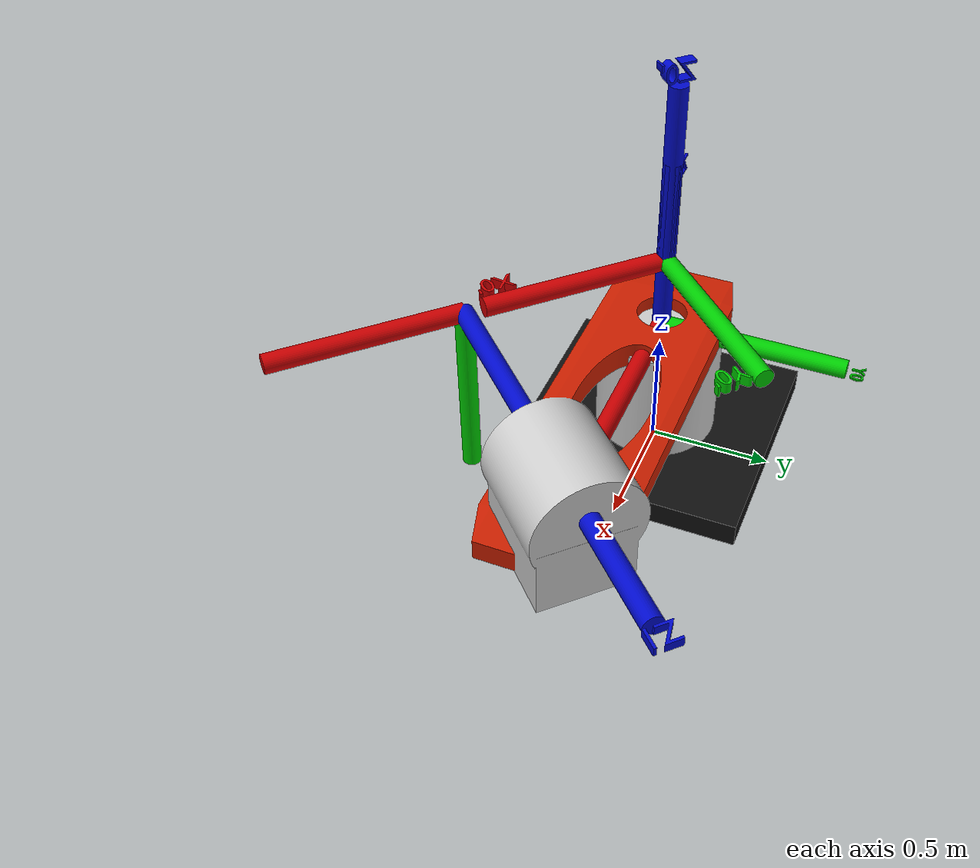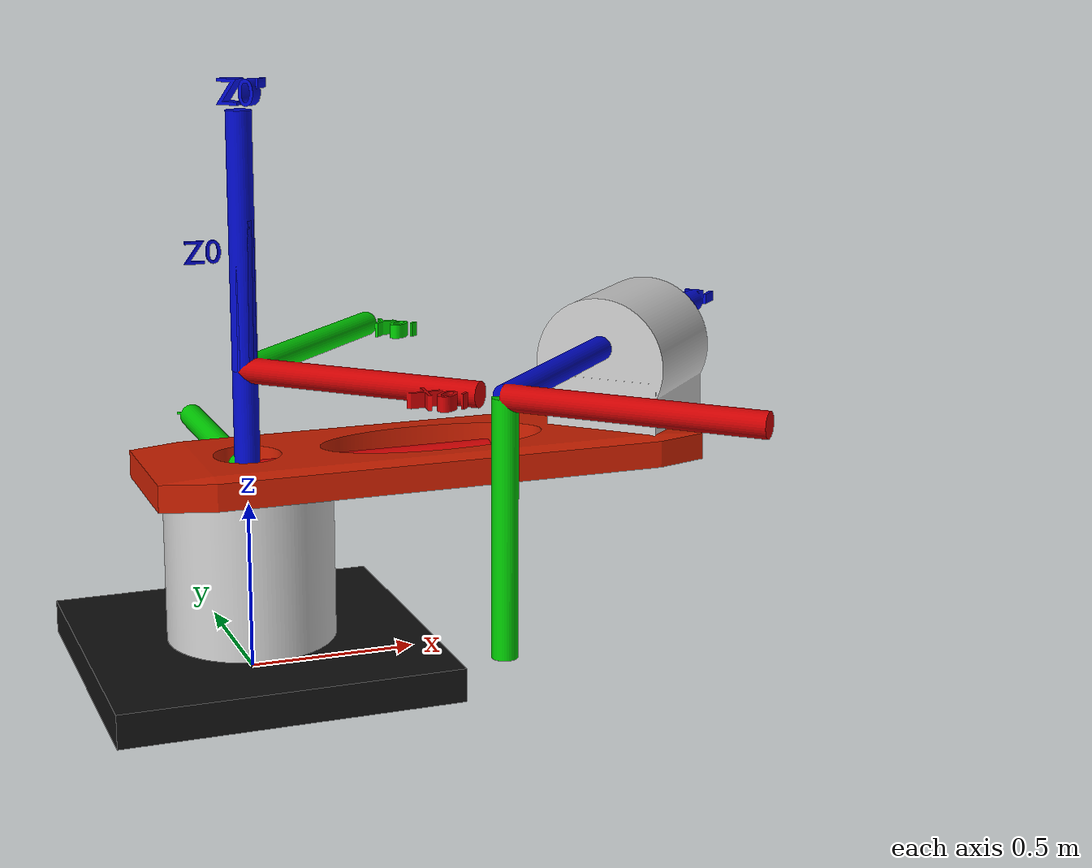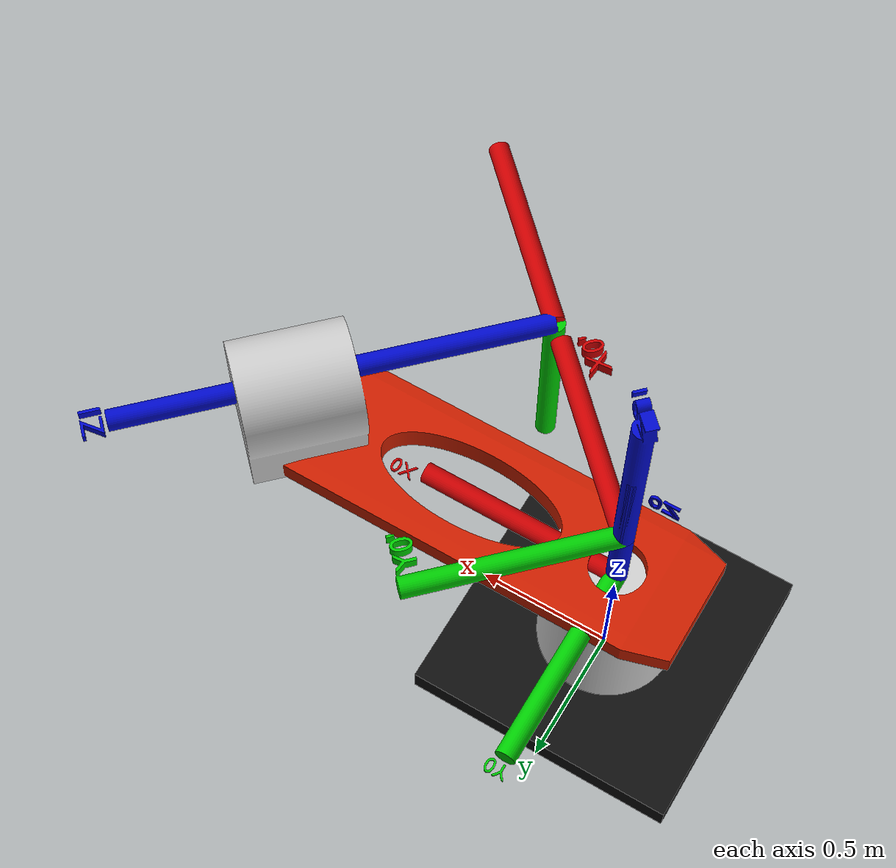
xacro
<?xml version="1.0"?>
<!-- Revolute-Revolute Manipulator -->
<robot name="planar_3dof" xmlns:xacro="http://www.ros.org/wiki/xacro">

  <!-- Constants for robot dimensions -->
  <xacro:property name="PI" value="3.1415926535897931"/>
  <xacro:property name="mass" value="1" />

  <xacro:property name="scale_dim" value="1.0" />
  <xacro:property name="base_z_displacement" value="0.051" />
  <xacro:property name="link_1_bb_x" value="1.0" />
  <xacro:property name="link_1_bb_y" value="1.0" />
  <xacro:property name="link_1_bb_z" value="0.58" />

  <xacro:property name="link_2_bb_x" value="1.82294" />
  <xacro:property name="link_2_bb_y" value="0.603217" />
  <xacro:property name="link_2_bb_z" value="0.508202" />

  <xacro:property name="axis_bb" value="0.788" />
  <xacro:property name="frame0_z_displacement" value="0.54262" />
  <xacro:property name="scale_axis_dim" value="1.0" />

  <xacro:property name="d_i" value="0.31123" />
  <xacro:property name="theta_i" value="${-PI/4}" />
  <xacro:property name="r_i" value="0.825129" />
  <xacro:property name="alpha_i" value="${-PI/2}" />

  <xacro:macro name="box_inertia" params="mass x y z">
    <inertia  ixx="${mass*(y*y+z*z)/12.0}" ixy = "0" ixz = "0"
              iyy="${mass*(x*x+z*z)/12.0}" iyz = "0"
              izz="${mass*(x*x+y*y)/12.0}"
    />
  </xacro:macro>

  <xacro:macro  name="cylinder_inertia" params="mass r l">
      <inertia  ixx="${mass*(3*r*r+l*l)/12}" ixy = "0" ixz = "0"
                iyy="${mass*(3*r*r+l*l)/12}" iyz = "0"
                izz="${mass*(r*r)/2}" />
  </xacro:macro >

  <xacro:include filename="$(find dh_description)/robot/dh_sim.gazebo" />

  <link name="world"/>

  <link name="link_1">
    <collision>
      <origin xyz="0 0 0" rpy="0 0 0"/>
          <geometry>
                <mesh filename="package://dh_description/meshes/dh_sim_link1.dae" scale="${scale_dim} ${scale_dim} ${scale_dim}"/>
          </geometry>
    </collision>

    <visual>
      <origin xyz="0 0 0" rpy="0 0 0"/>
          <geometry>
                <mesh filename="package://dh_description/meshes/dh_sim_link1.dae" scale="${scale_dim} ${scale_dim} ${scale_dim}"/>
          </geometry>
    </visual>

    <inertial>
      <origin xyz="0 0 0" rpy="0 0 0"/>
      <mass value="${mass}"/>
      <xacro:box_inertia mass="${mass}" x="${link_1_bb_x}" y="${link_1_bb_y}" z="${link_1_bb_z}"/>
    </inertial>
  </link>

  <joint name="fixed_world_to_base_joint" type="fixed">
    <origin xyz="0 0 ${base_z_displacement}" rpy="0 0 0"/>
    <parent link="world"/>
    <child link="link_1"/>
  </joint>

  <!-- Extra visual frames-->
  <link name="frame_0">
    <collision>
      <origin xyz="0 0 0" rpy="0 0 0"/>
          <geometry>
                <mesh filename="package://dh_description/meshes/axis_frame_0.dae" scale="${scale_axis_dim} ${scale_axis_dim} ${scale_axis_dim}"/>
          </geometry>
    </collision>

    <visual>
      <origin xyz="0 0 0" rpy="0 0 0"/>
          <geometry>
                <mesh filename="package://dh_description/meshes/axis_frame_0.dae" scale="${scale_axis_dim} ${scale_axis_dim} ${scale_axis_dim}"/>
          </geometry>
    </visual>

    <inertial>
      <origin xyz="0 0 0" rpy="0 0 0"/>
      <mass value="${mass}"/>
      <xacro:box_inertia mass="${mass}" x="${axis_bb}" y="${axis_bb}" z="${axis_bb}"/>
    </inertial>
  </link>

  <joint name="fixed_frame_0" type="fixed">
    <origin xyz="0 0 ${frame0_z_displacement}" rpy="0 0 0"/>
    <parent link="link_1"/>
    <child link="frame_0"/>
  </joint>

  <link name="link_2">
    <collision>
      <origin xyz="0 0 0" rpy="0 0 0"/>
          <geometry>
                <mesh filename="package://dh_description/meshes/dh_sim_link_2.dae" scale="${scale_dim} ${scale_dim} ${scale_dim}"/>
          </geometry>
    </collision>

    <visual>
      <origin xyz="0 0 0" rpy="0 0 0"/>
          <geometry>
                <mesh filename="package://dh_description/meshes/dh_sim_link_2.dae" scale="${scale_dim} ${scale_dim} ${scale_dim}"/>
          </geometry>
    </visual>

    <inertial>
      <origin xyz="0 0 0" rpy="0 0 0"/>
      <mass value="${mass}"/>
      <xacro:box_inertia mass="${mass}" x="${link_2_bb_x}" y="${link_2_bb_y}" z="${link_2_bb_z}"/>
    </inertial>
  </link>

  <joint name="joint1" type="continuous">
    <parent link="frame_0"/>
    <child link="link_2"/>
    <origin xyz="0 0 0" rpy="0 0 0"/>
    <axis xyz="0 0 1"/>
  </joint>

  <!-- Extra visual frames-->
  <link name="frame_0_prima">
    <visual>
      <origin xyz="0 0 0" rpy="0 0 0"/>
          <geometry>
                <mesh filename="package://dh_description/meshes/axis_frame_0_prima.dae" scale="${scale_axis_dim} ${scale_axis_dim} ${scale_axis_dim}"/>
          </geometry>
    </visual>

    <inertial>
      <origin xyz="0 0 0" rpy="0 0 0"/>
      <mass value="${mass}"/>
      <xacro:box_inertia mass="${mass}" x="${axis_bb}" y="${axis_bb}" z="${axis_bb}"/>
    </inertial>
  </link>

  <joint name="fixed_frame_0_prima" type="fixed">
    <origin xyz="0 0 ${d_i}" rpy="0 0 ${theta_i}"/>
    <parent link="link_2"/>
    <child link="frame_0_prima"/>
  </joint>

  <link name="frame_1">

    <visual>
      <origin xyz="0 0 0" rpy="0 0 0"/>
          <geometry>
                <mesh filename="package://dh_description/meshes/axis_frame_1.dae" scale="${scale_dim} ${scale_dim} ${scale_dim}"/>
          </geometry>
    </visual>

    <inertial>
      <origin xyz="0 0 0" rpy="0 0 0"/>
      <mass value="${mass}"/>
      <xacro:box_inertia mass="${mass}" x="${axis_bb}" y="${axis_bb}" z="${axis_bb}"/>
    </inertial>
  </link>

  <joint name="fixed_frame_1" type="fixed">
    <origin xyz="${r_i} 0 0" rpy="${alpha_i} 0 0"/>
    <parent link="frame_0_prima"/>
    <child link="frame_1"/>
  </joint>

  <transmission name="tran1">
    <type>transmission_interface/SimpleTransmission</type>
    <joint name="joint1">
      <hardwareInterface>EffortJointInterface</hardwareInterface>
    </joint>
    <actuator name="motor1">
      <hardwareInterface>EffortJointInterface</hardwareInterface>
      <mechanicalReduction>1</mechanicalReduction>
    </actuator>
  </transmission>

</robot>
